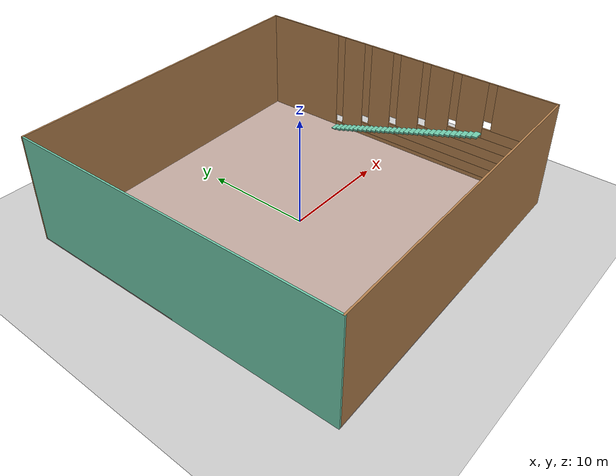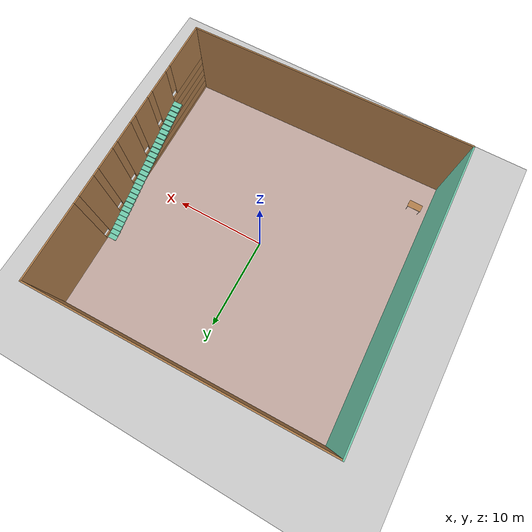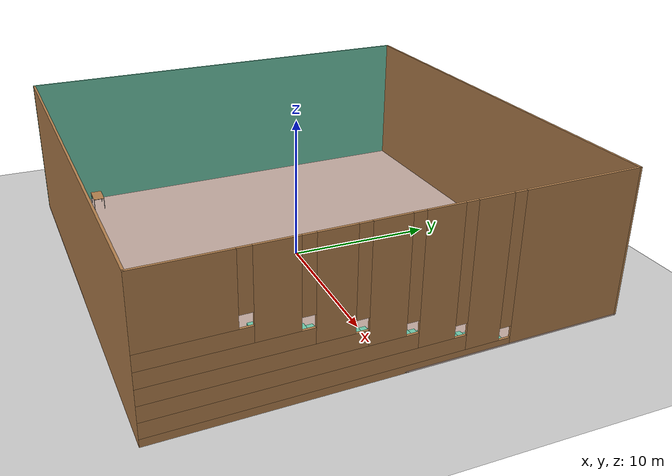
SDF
<sdf version="1.6">
 <world name="default">
  <model name="ground_plane">
   <static>1</static>
   <link name="link">
    <collision name="collision">
     <geometry><plane><normal>0 0 1</normal><size>100 100</size></plane></geometry>
     <surface><friction><ode><mu>100</mu><mu2>50</mu2></ode></friction></surface>
    </collision>
    <visual name="visual">
     <cast_shadows>0</cast_shadows>
     <geometry><plane><normal>0 0 1</normal><size>100 100</size></plane></geometry>
     <material>
      <script><uri>file://media/materials/scripts/gazebo.material</uri><name>Gazebo/Grey</name></script>
     </material>
    </visual>
   </link>
  </model>
  <model name="stair_building">
   <pose>0.125235 0.089072 0 0 0 -3.11609</pose>
   <link name="Floor_4">
    <collision name="Floor_4_Collision">
     <geometry><box><size>30.15 30.15 0.1</size></box></geometry>
     <pose>0 0 0.05 0 -0 0</pose>
    </collision>
    <visual name="Floor_4_Visual">
     <pose>0 0 0.05 0 -0 0</pose>
     <geometry><box><size>30.15 30.15 0.1</size></box></geometry>
     <material>
      <script><uri>file://media/materials/scripts/gazebo.material</uri><name>Gazebo/Grey</name></script>
      <ambient>0.760784 0.662745 0.627451 1</ambient>
     </material>
     <meta><layer>1</layer></meta>
    </visual>
   </link>
   <link name="Stairs_6">
    <visual name="Stairs_6_Visual_0">
     <pose>-14.4624 -6.61586 0.083333 0 0 -3.14159</pose>
     <geometry><box><size>1 0.525667 0.166667</size></box></geometry>
     <material>
      <script><uri>file://media/materials/scripts/gazebo.material</uri><name>Gazebo/Grey</name></script>
      <ambient>0.435294 0.796078 0.67451 1</ambient>
     </material>
     <meta><layer>1</layer></meta>
    </visual>
    <collision name="Stairs_6_Collision_0">
     <geometry><box><size>1 0.525667 0.166667</size></box></geometry>
     <pose>-14.4624 -6.61586 0.083333 0 0 -3.14159</pose>
    </collision>
    <visual name="Stairs_6_Visual_1">
     <pose>-14.4624 -6.09019 0.25 0 0 -3.14159</pose>
     <geometry><box><size>1 0.525667 0.166667</size></box></geometry>
     <material>
      <script><uri>file://media/materials/scripts/gazebo.material</uri><name>Gazebo/Grey</name></script>
      <ambient>0.435294 0.796078 0.67451 1</ambient>
     </material>
     <meta><layer>1</layer></meta>
    </visual>
    <collision name="Stairs_6_Collision_1">
     <geometry><box><size>1 0.525667 0.166667</size></box></geometry>
     <pose>-14.4624 -6.09019 0.25 0 0 -3.14159</pose>
    </collision>
    <visual name="Stairs_6_Visual_2">
     <pose>-14.4624 -5.56452 0.416667 0 0 -3.14159</pose>
     <geometry><box><size>1 0.525667 0.166667</size></box></geometry>
     <material>
      <script><uri>file://media/materials/scripts/gazebo.material</uri><name>Gazebo/Grey</name></script>
      <ambient>0.435294 0.796078 0.67451 1</ambient>
     </material>
     <meta><layer>1</layer></meta>
    </visual>
    <collision name="Stairs_6_Collision_2">
     <geometry><box><size>1 0.525667 0.166667</size></box></geometry>
     <pose>-14.4624 -5.56452 0.416667 0 0 -3.14159</pose>
    </collision>
    <visual name="Stairs_6_Visual_3">
     <pose>-14.4624 -5.03886 0.583333 0 0 -3.14159</pose>
     <geometry><box><size>1 0.525667 0.166667</size></box></geometry>
     <material>
      <script><uri>file://media/materials/scripts/gazebo.material</uri><name>Gazebo/Grey</name></script>
      <ambient>0.435294 0.796078 0.67451 1</ambient>
     </material>
     <meta><layer>1</layer></meta>
    </visual>
    <collision name="Stairs_6_Collision_3">
     <geometry><box><size>1 0.525667 0.166667</size></box></geometry>
     <pose>-14.4624 -5.03886 0.583333 0 0 -3.14159</pose>
    </collision>
    <visual name="Stairs_6_Visual_4">
     <pose>-14.4624 -4.51319 0.75 0 0 -3.14159</pose>
     <geometry><box><size>1 0.525667 0.166667</size></box></geometry>
     <material>
      <script><uri>file://media/materials/scripts/gazebo.material</uri><name>Gazebo/Grey</name></script>
      <ambient>0.435294 0.796078 0.67451 1</ambient>
     </material>
     <meta><layer>1</layer></meta>
    </visual>
    <collision name="Stairs_6_Collision_4">
     <geometry><box><size>1 0.525667 0.166667</size></box></geometry>
     <pose>-14.4624 -4.51319 0.75 0 0 -3.14159</pose>
    </collision>
    <visual name="Stairs_6_Visual_5">
     <pose>-14.4624 -3.98752 0.916667 0 0 -3.14159</pose>
     <geometry><box><size>1 0.525667 0.166667</size></box></geometry>
     <material>
      <script><uri>file://media/materials/scripts/gazebo.material</uri><name>Gazebo/Grey</name></script>
      <ambient>0.435294 0.796078 0.67451 1</ambient>
     </material>
     <meta><layer>1</layer></meta>
    </visual>
    <collision name="Stairs_6_Collision_5">
     <geometry><box><size>1 0.525667 0.166667</size></box></geometry>
     <pose>-14.4624 -3.98752 0.916667 0 0 -3.14159</pose>
    </collision>
    <visual name="Stairs_6_Visual_6">
     <pose>-14.4624 -3.46186 1.08333 0 0 -3.14159</pose>
     <geometry><box><size>1 0.525667 0.166667</size></box></geometry>
     <material>
      <script><uri>file://media/materials/scripts/gazebo.material</uri><name>Gazebo/Grey</name></script>
      <ambient>0.435294 0.796078 0.67451 1</ambient>
     </material>
     <meta><layer>1</layer></meta>
    </visual>
    <collision name="Stairs_6_Collision_6">
     <geometry><box><size>1 0.525667 0.166667</size></box></geometry>
     <pose>-14.4624 -3.46186 1.08333 0 0 -3.14159</pose>
    </collision>
    <visual name="Stairs_6_Visual_7">
     <pose>-14.4624 -2.93619 1.25 0 0 -3.14159</pose>
     <geometry><box><size>1 0.525667 0.166667</size></box></geometry>
     <material>
      <script><uri>file://media/materials/scripts/gazebo.material</uri><name>Gazebo/Grey</name></script>
      <ambient>0.435294 0.796078 0.67451 1</ambient>
     </material>
     <meta><layer>1</layer></meta>
    </visual>
    <collision name="Stairs_6_Collision_7">
     <geometry><box><size>1 0.525667 0.166667</size></box></geometry>
     <pose>-14.4624 -2.93619 1.25 0 0 -3.14159</pose>
    </collision>
    <visual name="Stairs_6_Visual_8">
     <pose>-14.4624 -2.41052 1.41667 0 0 -3.14159</pose>
     <geometry><box><size>1 0.525667 0.166667</size></box></geometry>
     <material>
      <script><uri>file://media/materials/scripts/gazebo.material</uri><name>Gazebo/Grey</name></script>
      <ambient>0.435294 0.796078 0.67451 1</ambient>
     </material>
     <meta><layer>1</layer></meta>
    </visual>
    <collision name="Stairs_6_Collision_8">
     <geometry><box><size>1 0.525667 0.166667</size></box></geometry>
     <pose>-14.4624 -2.41052 1.41667 0 0 -3.14159</pose>
    </collision>
    <visual name="Stairs_6_Visual_9">
     <pose>-14.4624 -1.88486 1.58333 0 0 -3.14159</pose>
     <geometry><box><size>1 0.525667 0.166667</size></box></geometry>
     <material>
      <script><uri>file://media/materials/scripts/gazebo.material</uri><name>Gazebo/Grey</name></script>
      <ambient>0.435294 0.796078 0.67451 1</ambient>
     </material>
     <meta><layer>1</layer></meta>
    </visual>
    <collision name="Stairs_6_Collision_9">
     <geometry><box><size>1 0.525667 0.166667</size></box></geometry>
     <pose>-14.4624 -1.88486 1.58333 0 0 -3.14159</pose>
    </collision>
    <visual name="Stairs_6_Visual_10">
     <pose>-14.4624 -1.35919 1.75 0 0 -3.14159</pose>
     <geometry><box><size>1 0.525667 0.166667</size></box></geometry>
     <material>
      <script><uri>file://media/materials/scripts/gazebo.material</uri><name>Gazebo/Grey</name></script>
      <ambient>0.435294 0.796078 0.67451 1</ambient>
     </material>
     <meta><layer>1</layer></meta>
    </visual>
    <collision name="Stairs_6_Collision_10">
     <geometry><box><size>1 0.525667 0.166667</size></box></geometry>
     <pose>-14.4624 -1.35919 1.75 0 0 -3.14159</pose>
    </collision>
    <visual name="Stairs_6_Visual_11">
     <pose>-14.4624 -0.833524 1.91667 0 0 -3.14159</pose>
     <geometry><box><size>1 0.525667 0.166667</size></box></geometry>
     <material>
      <script><uri>file://media/materials/scripts/gazebo.material</uri><name>Gazebo/Grey</name></script>
      <ambient>0.435294 0.796078 0.67451 1</ambient>
     </material>
     <meta><layer>1</layer></meta>
    </visual>
    <collision name="Stairs_6_Collision_11">
     <geometry><box><size>1 0.525667 0.166667</size></box></geometry>
     <pose>-14.4624 -0.833524 1.91667 0 0 -3.14159</pose>
    </collision>
    <visual name="Stairs_6_Visual_12">
     <pose>-14.4624 -0.307858 2.08333 0 0 -3.14159</pose>
     <geometry><box><size>1 0.525667 0.166667</size></box></geometry>
     <material>
      <script><uri>file://media/materials/scripts/gazebo.material</uri><name>Gazebo/Grey</name></script>
      <ambient>0.435294 0.796078 0.67451 1</ambient>
     </material>
     <meta><layer>1</layer></meta>
    </visual>
    <collision name="Stairs_6_Collision_12">
     <geometry><box><size>1 0.525667 0.166667</size></box></geometry>
     <pose>-14.4624 -0.307858 2.08333 0 0 -3.14159</pose>
    </collision>
    <visual name="Stairs_6_Visual_13">
     <pose>-14.4624 0.217809 2.25 0 0 -3.14159</pose>
     <geometry><box><size>1 0.525667 0.166667</size></box></geometry>
     <material>
      <script><uri>file://media/materials/scripts/gazebo.material</uri><name>Gazebo/Grey</name></script>
      <ambient>0.435294 0.796078 0.67451 1</ambient>
     </material>
     <meta><layer>1</layer></meta>
    </visual>
    <collision name="Stairs_6_Collision_13">
     <geometry><box><size>1 0.525667 0.166667</size></box></geometry>
     <pose>-14.4624 0.217809 2.25 0 0 -3.14159</pose>
    </collision>
    <visual name="Stairs_6_Visual_14">
     <pose>-14.4624 0.743476 2.41667 0 0 -3.14159</pose>
     <geometry><box><size>1 0.525667 0.166667</size></box></geometry>
     <material>
      <script><uri>file://media/materials/scripts/gazebo.material</uri><name>Gazebo/Grey</name></script>
      <ambient>0.435294 0.796078 0.67451 1</ambient>
     </material>
     <meta><layer>1</layer></meta>
    </visual>
    <collision name="Stairs_6_Collision_14">
     <geometry><box><size>1 0.525667 0.166667</size></box></geometry>
     <pose>-14.4624 0.743476 2.41667 0 0 -3.14159</pose>
    </collision>
    <visual name="Stairs_6_Visual_15">
     <pose>-14.4624 1.26914 2.58333 0 0 -3.14159</pose>
     <geometry><box><size>1 0.525667 0.166667</size></box></geometry>
     <material>
      <script><uri>file://media/materials/scripts/gazebo.material</uri><name>Gazebo/Grey</name></script>
      <ambient>0.435294 0.796078 0.67451 1</ambient>
     </material>
     <meta><layer>1</layer></meta>
    </visual>
    <collision name="Stairs_6_Collision_15">
     <geometry><box><size>1 0.525667 0.166667</size></box></geometry>
     <pose>-14.4624 1.26914 2.58333 0 0 -3.14159</pose>
    </collision>
    <visual name="Stairs_6_Visual_16">
     <pose>-14.4624 1.79481 2.75 0 0 -3.14159</pose>
     <geometry><box><size>1 0.525667 0.166667</size></box></geometry>
     <material>
      <script><uri>file://media/materials/scripts/gazebo.material</uri><name>Gazebo/Grey</name></script>
      <ambient>0.435294 0.796078 0.67451 1</ambient>
     </material>
     <meta><layer>1</layer></meta>
    </visual>
    <collision name="Stairs_6_Collision_16">
     <geometry><box><size>1 0.525667 0.166667</size></box></geometry>
     <pose>-14.4624 1.79481 2.75 0 0 -3.14159</pose>
    </collision>
    <visual name="Stairs_6_Visual_17">
     <pose>-14.4624 2.32048 2.91667 0 0 -3.14159</pose>
     <geometry><box><size>1 0.525667 0.166667</size></box></geometry>
     <material>
      <script><uri>file://media/materials/scripts/gazebo.material</uri><name>Gazebo/Grey</name></script>
      <ambient>0.435294 0.796078 0.67451 1</ambient>
     </material>
     <meta><layer>1</layer></meta>
    </visual>
    <collision name="Stairs_6_Collision_17">
     <geometry><box><size>1 0.525667 0.166667</size></box></geometry>
     <pose>-14.4624 2.32048 2.91667 0 0 -3.14159</pose>
    </collision>
    <visual name="Stairs_6_Visual_18">
     <pose>-14.4624 2.84614 3.08333 0 0 -3.14159</pose>
     <geometry><box><size>1 0.525667 0.166667</size></box></geometry>
     <material>
      <script><uri>file://media/materials/scripts/gazebo.material</uri><name>Gazebo/Grey</name></script>
      <ambient>0.435294 0.796078 0.67451 1</ambient>
     </material>
     <meta><layer>1</layer></meta>
    </visual>
    <collision name="Stairs_6_Collision_18">
     <geometry><box><size>1 0.525667 0.166667</size></box></geometry>
     <pose>-14.4624 2.84614 3.08333 0 0 -3.14159</pose>
    </collision>
    <visual name="Stairs_6_Visual_19">
     <pose>-14.4624 3.37181 3.25 0 0 -3.14159</pose>
     <geometry><box><size>1 0.525667 0.166667</size></box></geometry>
     <material>
      <script><uri>file://media/materials/scripts/gazebo.material</uri><name>Gazebo/Grey</name></script>
      <ambient>0.435294 0.796078 0.67451 1</ambient>
     </material>
     <meta><layer>1</layer></meta>
    </visual>
    <collision name="Stairs_6_Collision_19">
     <geometry><box><size>1 0.525667 0.166667</size></box></geometry>
     <pose>-14.4624 3.37181 3.25 0 0 -3.14159</pose>
    </collision>
    <visual name="Stairs_6_Visual_20">
     <pose>-14.4624 3.89748 3.41667 0 0 -3.14159</pose>
     <geometry><box><size>1 0.525667 0.166667</size></box></geometry>
     <material>
      <script><uri>file://media/materials/scripts/gazebo.material</uri><name>Gazebo/Grey</name></script>
      <ambient>0.435294 0.796078 0.67451 1</ambient>
     </material>
     <meta><layer>1</layer></meta>
    </visual>
    <collision name="Stairs_6_Collision_20">
     <geometry><box><size>1 0.525667 0.166667</size></box></geometry>
     <pose>-14.4624 3.89748 3.41667 0 0 -3.14159</pose>
    </collision>
    <visual name="Stairs_6_Visual_21">
     <pose>-14.4624 4.42314 3.58333 0 0 -3.14159</pose>
     <geometry><box><size>1 0.525667 0.166667</size></box></geometry>
     <material>
      <script><uri>file://media/materials/scripts/gazebo.material</uri><name>Gazebo/Grey</name></script>
      <ambient>0.435294 0.796078 0.67451 1</ambient>
     </material>
     <meta><layer>1</layer></meta>
    </visual>
    <collision name="Stairs_6_Collision_21">
     <geometry><box><size>1 0.525667 0.166667</size></box></geometry>
     <pose>-14.4624 4.42314 3.58333 0 0 -3.14159</pose>
    </collision>
    <visual name="Stairs_6_Visual_22">
     <pose>-14.4624 4.94881 3.75 0 0 -3.14159</pose>
     <geometry><box><size>1 0.525667 0.166667</size></box></geometry>
     <material>
      <script><uri>file://media/materials/scripts/gazebo.material</uri><name>Gazebo/Grey</name></script>
      <ambient>0.435294 0.796078 0.67451 1</ambient>
     </material>
     <meta><layer>1</layer></meta>
    </visual>
    <collision name="Stairs_6_Collision_22">
     <geometry><box><size>1 0.525667 0.166667</size></box></geometry>
     <pose>-14.4624 4.94881 3.75 0 0 -3.14159</pose>
    </collision>
    <visual name="Stairs_6_Visual_23">
     <pose>-14.4624 5.47448 3.91667 0 0 -3.14159</pose>
     <geometry><box><size>1 0.525667 0.166667</size></box></geometry>
     <material>
      <script><uri>file://media/materials/scripts/gazebo.material</uri><name>Gazebo/Grey</name></script>
      <ambient>0.435294 0.796078 0.67451 1</ambient>
     </material>
     <meta><layer>1</layer></meta>
    </visual>
    <collision name="Stairs_6_Collision_23">
     <geometry><box><size>1 0.525667 0.166667</size></box></geometry>
     <pose>-14.4624 5.47448 3.91667 0 0 -3.14159</pose>
    </collision>
    <visual name="Stairs_6_Visual_24">
     <pose>-14.4624 6.00014 4.08333 0 0 -3.14159</pose>
     <geometry><box><size>1 0.525667 0.166667</size></box></geometry>
     <material>
      <script><uri>file://media/materials/scripts/gazebo.material</uri><name>Gazebo/Grey</name></script>
      <ambient>0.435294 0.796078 0.67451 1</ambient>
     </material>
     <meta><layer>1</layer></meta>
    </visual>
    <collision name="Stairs_6_Collision_24">
     <geometry><box><size>1 0.525667 0.166667</size></box></geometry>
     <pose>-14.4624 6.00014 4.08333 0 0 -3.14159</pose>
    </collision>
    <visual name="Stairs_6_Visual_25">
     <pose>-14.4624 6.52581 4.25 0 0 -3.14159</pose>
     <geometry><box><size>1 0.525667 0.166667</size></box></geometry>
     <material>
      <script><uri>file://media/materials/scripts/gazebo.material</uri><name>Gazebo/Grey</name></script>
      <ambient>0.435294 0.796078 0.67451 1</ambient>
     </material>
     <meta><layer>1</layer></meta>
    </visual>
    <collision name="Stairs_6_Collision_25">
     <geometry><box><size>1 0.525667 0.166667</size></box></geometry>
     <pose>-14.4624 6.52581 4.25 0 0 -3.14159</pose>
    </collision>
    <visual name="Stairs_6_Visual_26">
     <pose>-14.4624 7.05148 4.41667 0 0 -3.14159</pose>
     <geometry><box><size>1 0.525667 0.166667</size></box></geometry>
     <material>
      <script><uri>file://media/materials/scripts/gazebo.material</uri><name>Gazebo/Grey</name></script>
      <ambient>0.435294 0.796078 0.67451 1</ambient>
     </material>
     <meta><layer>1</layer></meta>
    </visual>
    <collision name="Stairs_6_Collision_26">
     <geometry><box><size>1 0.525667 0.166667</size></box></geometry>
     <pose>-14.4624 7.05148 4.41667 0 0 -3.14159</pose>
    </collision>
    <visual name="Stairs_6_Visual_27">
     <pose>-14.4624 7.57714 4.58333 0 0 -3.14159</pose>
     <geometry><box><size>1 0.525667 0.166667</size></box></geometry>
     <material>
      <script><uri>file://media/materials/scripts/gazebo.material</uri><name>Gazebo/Grey</name></script>
      <ambient>0.435294 0.796078 0.67451 1</ambient>
     </material>
     <meta><layer>1</layer></meta>
    </visual>
    <collision name="Stairs_6_Collision_27">
     <geometry><box><size>1 0.525667 0.166667</size></box></geometry>
     <pose>-14.4624 7.57714 4.58333 0 0 -3.14159</pose>
    </collision>
    <visual name="Stairs_6_Visual_28">
     <pose>-14.4624 8.10281 4.75 0 0 -3.14159</pose>
     <geometry><box><size>1 0.525667 0.166667</size></box></geometry>
     <material>
      <script><uri>file://media/materials/scripts/gazebo.material</uri><name>Gazebo/Grey</name></script>
      <ambient>0.435294 0.796078 0.67451 1</ambient>
     </material>
     <meta><layer>1</layer></meta>
    </visual>
    <collision name="Stairs_6_Collision_28">
     <geometry><box><size>1 0.525667 0.166667</size></box></geometry>
     <pose>-14.4624 8.10281 4.75 0 0 -3.14159</pose>
    </collision>
    <visual name="Stairs_6_Visual_29">
     <pose>-14.4624 8.62848 4.91667 0 0 -3.14159</pose>
     <geometry><box><size>1 0.525667 0.166667</size></box></geometry>
     <material>
      <script><uri>file://media/materials/scripts/gazebo.material</uri><name>Gazebo/Grey</name></script>
      <ambient>0.435294 0.796078 0.67451 1</ambient>
     </material>
     <meta><layer>1</layer></meta>
    </visual>
    <collision name="Stairs_6_Collision_29">
     <geometry><box><size>1 0.525667 0.166667</size></box></geometry>
     <pose>-14.4624 8.62848 4.91667 0 0 -3.14159</pose>
    </collision>
   </link>
   <link name="Wall_24">
    <collision name="Wall_24_Collision"><geometry><box><size>30.15 0.15 0</size></box></geometry></collision>
    <visual name="Wall_24_Visual">
     <geometry><box><size>30.15 0.15 0</size></box></geometry>
     <material>
      <script><uri>file://media/materials/scripts/gazebo.material</uri><name>Gazebo/Grey</name></script>
      <ambient>1 1 1 1</ambient>
     </material>
     <meta><layer>0</layer></meta>
    </visual>
    <pose>0 15 0 0 -0 3.14159</pose>
   </link>
   <link name="Wall_26">
    <collision name="Wall_26_Collision"><geometry><box><size>30.15 0.15 0</size></box></geometry></collision>
    <visual name="Wall_26_Visual">
     <geometry><box><size>30.15 0.15 0</size></box></geometry>
     <material>
      <script><uri>file://media/materials/scripts/gazebo.material</uri><name>Gazebo/Grey</name></script>
      <ambient>1 1 1 1</ambient>
     </material>
     <meta><layer>0</layer></meta>
    </visual>
    <pose>15 0 0 0 -0 -1.5708</pose>
   </link>
   <link name="Wall_28">
    <collision name="Wall_28_Collision"><geometry><box><size>30.15 0.15 0</size></box></geometry></collision>
    <visual name="Wall_28_Visual">
     <geometry><box><size>30.15 0.15 0</size></box></geometry>
     <material>
      <script><uri>file://media/materials/scripts/gazebo.material</uri><name>Gazebo/Grey</name></script>
      <ambient>1 1 1 1</ambient>
     </material>
     <meta><layer>0</layer></meta>
    </visual>
    <pose>-15 0 0 0 -0 1.5708</pose>
   </link>
   <link name="Wall_30">
    <collision name="Wall_30_Collision"><geometry><box><size>30.15 0.15 0</size></box></geometry></collision>
    <visual name="Wall_30_Visual">
     <geometry><box><size>30.15 0.15 0</size></box></geometry>
     <material>
      <script><uri>file://media/materials/scripts/gazebo.material</uri><name>Gazebo/Grey</name></script>
      <ambient>1 1 1 1</ambient>
     </material>
     <meta><layer>0</layer></meta>
    </visual>
    <pose>0 -15 0 0 -0 0</pose>
   </link>
   <link name="Wall_32">
    <collision name="Wall_32_Collision">
     <geometry><box><size>30.15 0.15 10</size></box></geometry>
     <pose>0 0 5 0 -0 0</pose>
    </collision>
    <visual name="Wall_32_Visual">
     <pose>0 0 5 0 -0 0</pose>
     <geometry><box><size>30.15 0.15 10</size></box></geometry>
     <material>
      <script><uri>file://media/materials/scripts/gazebo.material</uri><name>Gazebo/Wood</name></script>
      <ambient>1 1 1 1</ambient>
     </material>
     <meta><layer>1</layer></meta>
    </visual>
    <pose>0 15 0 0 -0 3.14159</pose>
   </link>
   <link name="Wall_33">
    <collision name="Wall_33_Collision">
     <geometry><box><size>30.15 0.15 10</size></box></geometry>
     <pose>0 0 5 0 -0 0</pose>
    </collision>
    <visual name="Wall_33_Visual">
     <pose>0 0 5 0 -0 0</pose>
     <geometry><box><size>30.15 0.15 10</size></box></geometry>
     <material>
      <script><uri>file://media/materials/scripts/gazebo.material</uri><name>Gazebo/Grey</name></script>
      <ambient>0.435294 0.796078 0.67451 1</ambient>
     </material>
     <meta><layer>1</layer></meta>
    </visual>
    <pose>15 0 0 0 -0 -1.5708</pose>
   </link>
   <link name="Wall_34">
    <pose>-15 0 0 0 -0 1.5708</pose>
    <visual name="Wall_34_Visual_0">
     <pose>-11.0475 0 5 0 -0 0</pose>
     <geometry><box><size>8.05509 0.15 10</size></box></geometry>
     <material>
      <script><uri>file://media/materials/scripts/gazebo.material</uri><name>Gazebo/Wood</name></script>
      <ambient>1 1 1 1</ambient>
     </material>
     <meta><layer>1</layer></meta>
    </visual>
    <collision name="Wall_34_Collision_0">
     <geometry><box><size>8.05509 0.15 10</size></box></geometry>
     <pose>-11.0475 0 5 0 -0 0</pose>
    </collision>
    <visual name="Wall_34_Visual_1">
     <pose>4.02754 0 0.25 0 -0 0</pose>
     <geometry><box><size>22.0949 0.15 0.5</size></box></geometry>
     <material>
      <script><uri>file://media/materials/scripts/gazebo.material</uri><name>Gazebo/Wood</name></script>
      <ambient>1 1 1 1</ambient>
     </material>
     <meta><layer>1</layer></meta>
    </visual>
    <collision name="Wall_34_Collision_1">
     <geometry><box><size>22.0949 0.15 0.5</size></box></geometry>
     <pose>4.02754 0 0.25 0 -0 0</pose>
    </collision>
    <visual name="Wall_34_Visual_2">
     <pose>-5.06834 0 5.25 0 -0 0</pose>
     <geometry><box><size>2.30315 0.15 9.5</size></box></geometry>
     <material>
      <script><uri>file://media/materials/scripts/gazebo.material</uri><name>Gazebo/Wood</name></script>
      <ambient>1 1 1 1</ambient>
     </material>
     <meta><layer>1</layer></meta>
    </visual>
    <collision name="Wall_34_Collision_2">
     <geometry><box><size>2.30315 0.15 9.5</size></box></geometry>
     <pose>-5.06834 0 5.25 0 -0 0</pose>
    </collision>
    <visual name="Wall_34_Visual_3">
     <pose>5.57912 0 1 0 -0 0</pose>
     <geometry><box><size>18.9918 0.15 1</size></box></geometry>
     <material>
      <script><uri>file://media/materials/scripts/gazebo.material</uri><name>Gazebo/Wood</name></script>
      <ambient>1 1 1 1</ambient>
     </material>
     <meta><layer>1</layer></meta>
    </visual>
    <collision name="Wall_34_Collision_3">
     <geometry><box><size>18.9918 0.15 1</size></box></geometry>
     <pose>5.57912 0 1 0 -0 0</pose>
    </collision>
    <visual name="Wall_34_Visual_4">
     <pose>-6.61991 0 5.65 0 -0 0</pose>
     <geometry><box><size>0.8 0.15 8.7</size></box></geometry>
     <material>
      <script><uri>file://media/materials/scripts/gazebo.material</uri><name>Gazebo/Wood</name></script>
      <ambient>1 1 1 1</ambient>
     </material>
     <meta><layer>1</layer></meta>
    </visual>
    <collision name="Wall_34_Collision_4">
     <geometry><box><size>0.8 0.15 8.7</size></box></geometry>
     <pose>-6.61991 0 5.65 0 -0 0</pose>
    </collision>
    <visual name="Wall_34_Visual_5">
     <pose>-1.92507 0 5.75 0 -0 0</pose>
     <geometry><box><size>2.3834 0.15 8.5</size></box></geometry>
     <material>
      <script><uri>file://media/materials/scripts/gazebo.material</uri><name>Gazebo/Wood</name></script>
      <ambient>1 1 1 1</ambient>
     </material>
     <meta><layer>1</layer></meta>
    </visual>
    <collision name="Wall_34_Collision_5">
     <geometry><box><size>2.3834 0.15 8.5</size></box></geometry>
     <pose>-1.92507 0 5.75 0 -0 0</pose>
    </collision>
    <visual name="Wall_34_Visual_6">
     <pose>7.17082 0 2 0 -0 0</pose>
     <geometry><box><size>15.8084 0.15 1</size></box></geometry>
     <material>
      <script><uri>file://media/materials/scripts/gazebo.material</uri><name>Gazebo/Wood</name></script>
      <ambient>1 1 1 1</ambient>
     </material>
     <meta><layer>1</layer></meta>
    </visual>
    <collision name="Wall_34_Collision_6">
     <geometry><box><size>15.8084 0.15 1</size></box></geometry>
     <pose>7.17082 0 2 0 -0 0</pose>
    </collision>
    <visual name="Wall_34_Visual_7">
     <pose>-3.51677 0 6.15 0 -0 0</pose>
     <geometry><box><size>0.8 0.15 7.7</size></box></geometry>
     <material>
      <script><uri>file://media/materials/scripts/gazebo.material</uri><name>Gazebo/Wood</name></script>
      <ambient>1 1 1 1</ambient>
     </material>
     <meta><layer>1</layer></meta>
    </visual>
    <collision name="Wall_34_Collision_7">
     <geometry><box><size>0.8 0.15 7.7</size></box></geometry>
     <pose>-3.51677 0 6.15 0 -0 0</pose>
    </collision>
    <visual name="Wall_34_Visual_8">
     <pose>1.23158 0 6.25 0 -0 0</pose>
     <geometry><box><size>2.3299 0.15 7.5</size></box></geometry>
     <material>
      <script><uri>file://media/materials/scripts/gazebo.material</uri><name>Gazebo/Wood</name></script>
      <ambient>1 1 1 1</ambient>
     </material>
     <meta><layer>1</layer></meta>
    </visual>
    <collision name="Wall_34_Collision_8">
     <geometry><box><size>2.3299 0.15 7.5</size></box></geometry>
     <pose>1.23158 0 6.25 0 -0 0</pose>
    </collision>
    <visual name="Wall_34_Visual_9">
     <pose>8.73576 0 3 0 -0 0</pose>
     <geometry><box><size>12.6785 0.15 1</size></box></geometry>
     <material>
      <script><uri>file://media/materials/scripts/gazebo.material</uri><name>Gazebo/Wood</name></script>
      <ambient>1 1 1 1</ambient>
     </material>
     <meta><layer>1</layer></meta>
    </visual>
    <collision name="Wall_34_Collision_9">
     <geometry><box><size>12.6785 0.15 1</size></box></geometry>
     <pose>8.73576 0 3 0 -0 0</pose>
    </collision>
    <visual name="Wall_34_Visual_10">
     <pose>-0.33337 0 6.65 0 -0 0</pose>
     <geometry><box><size>0.8 0.15 6.7</size></box></geometry>
     <material>
      <script><uri>file://media/materials/scripts/gazebo.material</uri><name>Gazebo/Wood</name></script>
      <ambient>1 1 1 1</ambient>
     </material>
     <meta><layer>1</layer></meta>
    </visual>
    <collision name="Wall_34_Collision_10">
     <geometry><box><size>0.8 0.15 6.7</size></box></geometry>
     <pose>-0.33337 0 6.65 0 -0 0</pose>
    </collision>
    <visual name="Wall_34_Visual_11">
     <pose>4.3481 0 6.75 0 -0 0</pose>
     <geometry><box><size>2.30315 0.15 6.5</size></box></geometry>
     <material>
      <script><uri>file://media/materials/scripts/gazebo.material</uri><name>Gazebo/Wood</name></script>
      <ambient>1 1 1 1</ambient>
     </material>
     <meta><layer>1</layer></meta>
    </visual>
    <collision name="Wall_34_Collision_11">
     <geometry><box><size>2.30315 0.15 6.5</size></box></geometry>
     <pose>4.3481 0 6.75 0 -0 0</pose>
    </collision>
    <visual name="Wall_34_Visual_12">
     <pose>10.2873 0 4 0 -0 0</pose>
     <geometry><box><size>9.57533 0.15 1</size></box></geometry>
     <material>
      <script><uri>file://media/materials/scripts/gazebo.material</uri><name>Gazebo/Wood</name></script>
      <ambient>1 1 1 1</ambient>
     </material>
     <meta><layer>1</layer></meta>
    </visual>
    <collision name="Wall_34_Collision_12">
     <geometry><box><size>9.57533 0.15 1</size></box></geometry>
     <pose>10.2873 0 4 0 -0 0</pose>
    </collision>
    <visual name="Wall_34_Visual_13">
     <pose>2.79653 0 7.15 0 -0 0</pose>
     <geometry><box><size>0.8 0.15 5.7</size></box></geometry>
     <material>
      <script><uri>file://media/materials/scripts/gazebo.material</uri><name>Gazebo/Wood</name></script>
      <ambient>1 1 1 1</ambient>
     </material>
     <meta><layer>1</layer></meta>
    </visual>
    <collision name="Wall_34_Collision_13">
     <geometry><box><size>0.8 0.15 5.7</size></box></geometry>
     <pose>2.79653 0 7.15 0 -0 0</pose>
    </collision>
    <visual name="Wall_34_Visual_14">
     <pose>7.585 0 7.25 0 -0 0</pose>
     <geometry><box><size>2.57066 0.15 5.5</size></box></geometry>
     <material>
      <script><uri>file://media/materials/scripts/gazebo.material</uri><name>Gazebo/Wood</name></script>
      <ambient>1 1 1 1</ambient>
     </material>
     <meta><layer>1</layer></meta>
    </visual>
    <collision name="Wall_34_Collision_14">
     <geometry><box><size>2.57066 0.15 5.5</size></box></geometry>
     <pose>7.585 0 7.25 0 -0 0</pose>
    </collision>
    <visual name="Wall_34_Visual_15">
     <pose>11.9727 0 5 0 -0 0</pose>
     <geometry><box><size>6.20467 0.15 1</size></box></geometry>
     <material>
      <script><uri>file://media/materials/scripts/gazebo.material</uri><name>Gazebo/Wood</name></script>
      <ambient>1 1 1 1</ambient>
     </material>
     <meta><layer>1</layer></meta>
    </visual>
    <collision name="Wall_34_Collision_15">
     <geometry><box><size>6.20467 0.15 1</size></box></geometry>
     <pose>11.9727 0 5 0 -0 0</pose>
    </collision>
    <visual name="Wall_34_Visual_16">
     <pose>5.89967 0 7.65 0 -0 0</pose>
     <geometry><box><size>0.8 0.15 4.7</size></box></geometry>
     <material>
      <script><uri>file://media/materials/scripts/gazebo.material</uri><name>Gazebo/Wood</name></script>
      <ambient>1 1 1 1</ambient>
     </material>
     <meta><layer>1</layer></meta>
    </visual>
    <collision name="Wall_34_Collision_16">
     <geometry><box><size>0.8 0.15 4.7</size></box></geometry>
     <pose>5.89967 0 7.65 0 -0 0</pose>
    </collision>
    <visual name="Wall_34_Visual_17">
     <pose>12.3727 0 7.75 0 -0 0</pose>
     <geometry><box><size>5.40467 0.15 4.5</size></box></geometry>
     <material>
      <script><uri>file://media/materials/scripts/gazebo.material</uri><name>Gazebo/Wood</name></script>
      <ambient>1 1 1 1</ambient>
     </material>
     <meta><layer>1</layer></meta>
    </visual>
    <collision name="Wall_34_Collision_17">
     <geometry><box><size>5.40467 0.15 4.5</size></box></geometry>
     <pose>12.3727 0 7.75 0 -0 0</pose>
    </collision>
    <visual name="Wall_34_Visual_18">
     <pose>9.27033 0 8.15 0 -0 0</pose>
     <geometry><box><size>0.8 0.15 3.7</size></box></geometry>
     <material>
      <script><uri>file://media/materials/scripts/gazebo.material</uri><name>Gazebo/Wood</name></script>
      <ambient>1 1 1 1</ambient>
     </material>
     <meta><layer>1</layer></meta>
    </visual>
    <collision name="Wall_34_Collision_18">
     <geometry><box><size>0.8 0.15 3.7</size></box></geometry>
     <pose>9.27033 0 8.15 0 -0 0</pose>
    </collision>
   </link>
   <link name="Wall_35">
    <collision name="Wall_35_Collision">
     <geometry><box><size>30.15 0.15 10</size></box></geometry>
     <pose>0 0 5 0 -0 0</pose>
    </collision>
    <visual name="Wall_35_Visual">
     <pose>0 0 5 0 -0 0</pose>
     <geometry><box><size>30.15 0.15 10</size></box></geometry>
     <material>
      <script><uri>file://media/materials/scripts/gazebo.material</uri><name>Gazebo/Wood</name></script>
      <ambient>1 1 1 1</ambient>
     </material>
     <meta><layer>1</layer></meta>
    </visual>
    <pose>0 -15 0 0 -0 0</pose>
   </link>
   <static>1</static>
  </model>
  <model name="table">
   <static>1</static>
   <link name="link">
    <collision name="surface">
     <pose>0 0 1 0 -0 0</pose>
     <geometry><box><size>1.5 0.8 0.03</size></box></geometry>
     <surface><friction><ode><mu>0.6</mu><mu2>0.6</mu2></ode></friction></surface>
    </collision>
    <visual name="visual1">
     <pose>0 0 1 0 -0 0</pose>
     <geometry><box><size>1.5 0.8 0.03</size></box></geometry>
     <material>
      <script><uri>file://media/materials/scripts/gazebo.material</uri><name>Gazebo/Wood</name></script>
     </material>
    </visual>
    <collision name="front_left_leg">
     <pose>0.68 0.38 0.5 0 -0 0</pose>
     <geometry><cylinder><radius>0.02</radius><length>1</length></cylinder></geometry>
    </collision>
    <visual name="front_left_leg">
     <pose>0.68 0.38 0.5 0 -0 0</pose>
     <geometry><cylinder><radius>0.02</radius><length>1</length></cylinder></geometry>
     <material>
      <script><uri>file://media/materials/scripts/gazebo.material</uri><name>Gazebo/Grey</name></script>
     </material>
    </visual>
    <collision name="front_right_leg">
     <pose>0.68 -0.38 0.5 0 -0 0</pose>
     <geometry><cylinder><radius>0.02</radius><length>1</length></cylinder></geometry>
    </collision>
    <visual name="front_right_leg">
     <pose>0.68 -0.38 0.5 0 -0 0</pose>
     <geometry><cylinder><radius>0.02</radius><length>1</length></cylinder></geometry>
     <material>
      <script><uri>file://media/materials/scripts/gazebo.material</uri><name>Gazebo/Grey</name></script>
     </material>
    </visual>
    <collision name="back_right_leg">
     <pose>-0.68 -0.38 0.5 0 -0 0</pose>
     <geometry><cylinder><radius>0.02</radius><length>1</length></cylinder></geometry>
    </collision>
    <visual name="back_right_leg">
     <pose>-0.68 -0.38 0.5 0 -0 0</pose>
     <geometry><cylinder><radius>0.02</radius><length>1</length></cylinder></geometry>
     <material>
      <script><uri>file://media/materials/scripts/gazebo.material</uri><name>Gazebo/Grey</name></script>
     </material>
    </visual>
    <collision name="back_left_leg">
     <pose>-0.68 0.38 0.5 0 -0 0</pose>
     <geometry><cylinder><radius>0.02</radius><length>1</length></cylinder></geometry>
    </collision>
    <visual name="back_left_leg">
     <pose>-0.68 0.38 0.5 0 -0 0</pose>
     <geometry><cylinder><radius>0.02</radius><length>1</length></cylinder></geometry>
     <material>
      <script><uri>file://media/materials/scripts/gazebo.material</uri><name>Gazebo/Grey</name></script>
     </material>
    </visual>
   </link>
   <pose>-12.9868 -11.7468 0 0 -0 0</pose>
  </model>
 </world>
</sdf>
